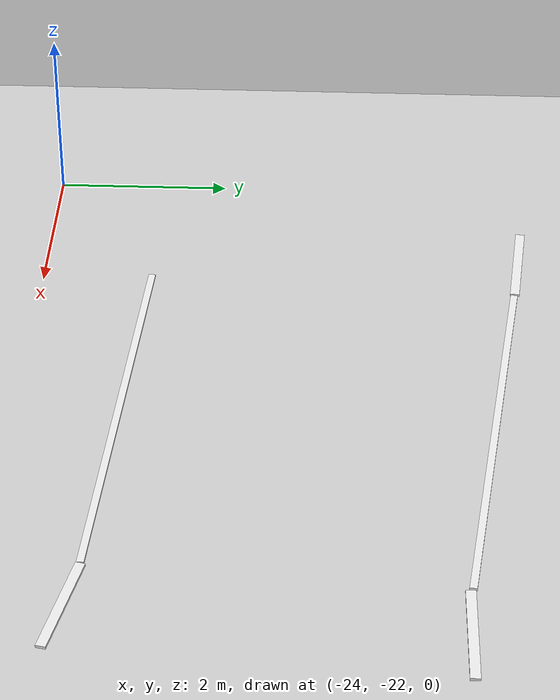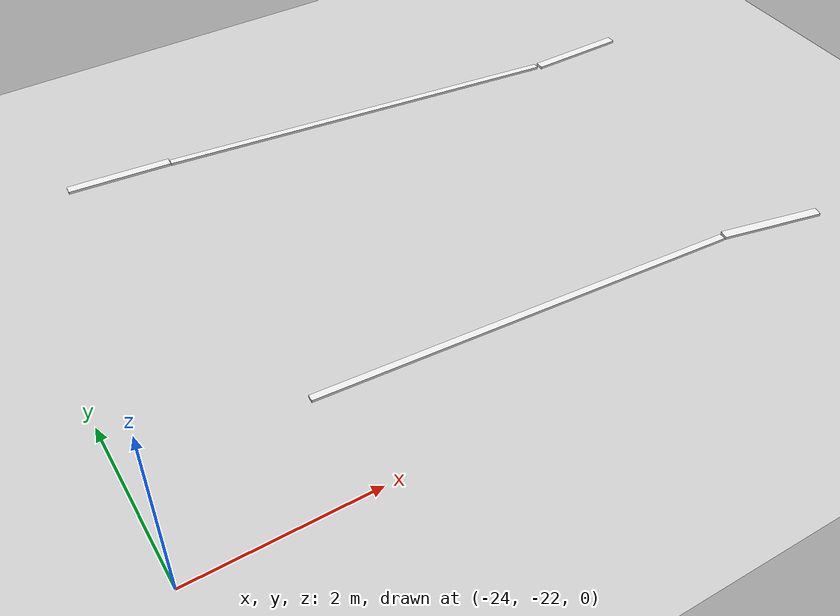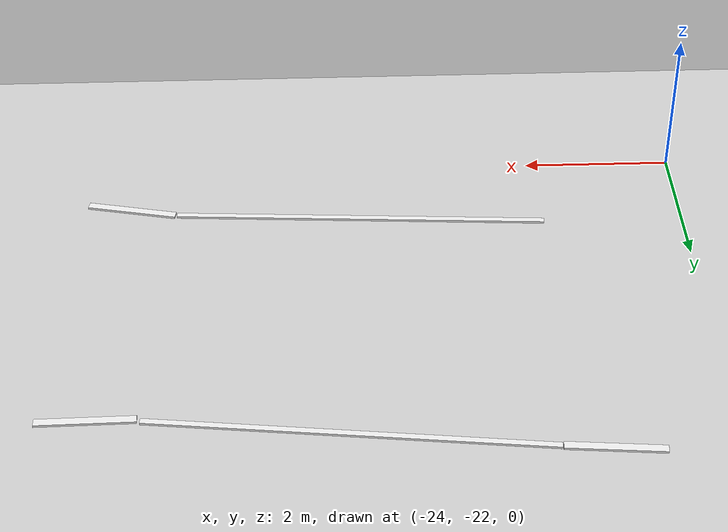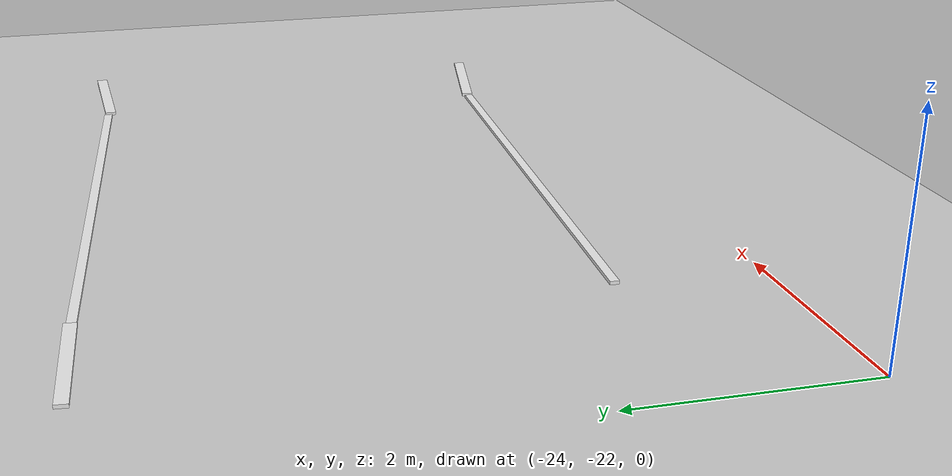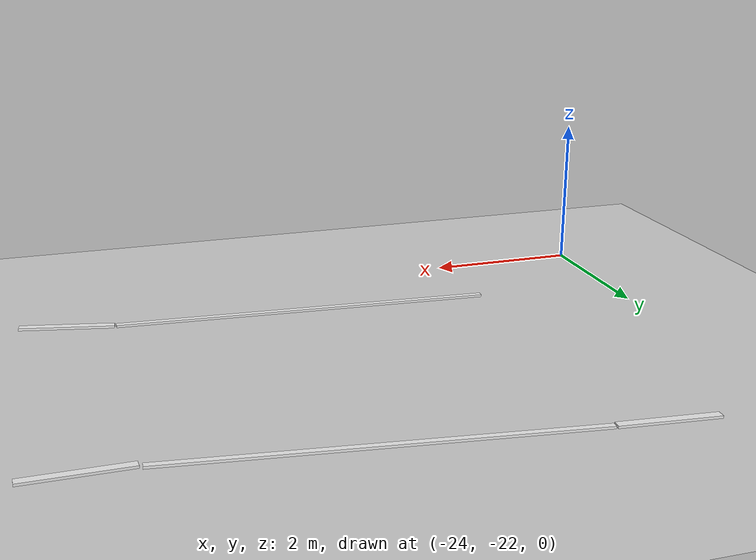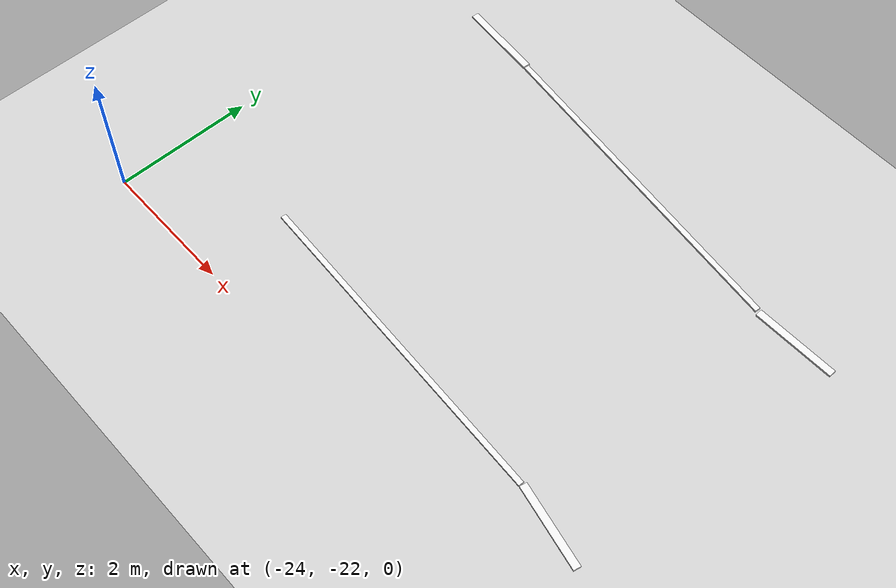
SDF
<sdf version="1.7">
 <world name="default">
  <model name="ground_plane">
   <static>1</static>
   <link name="link">
    <collision name="collision">
     <geometry><plane><normal>0 0 1</normal><size>100 100</size></plane></geometry>
     <surface><friction><ode><mu>100</mu><mu2>50</mu2></ode></friction></surface>
    </collision>
    <visual name="visual">
     <cast_shadows>0</cast_shadows>
     <geometry><plane><normal>0 0 1</normal><size>100 100</size></plane></geometry>
     <material>
      <script><uri>file://media/materials/scripts/gazebo.material</uri><name>Gazebo/Grey</name></script>
     </material>
    </visual>
   </link>
  </model>
  <model name="road_way_0_clone_0_clone_clone_0_clone_clone_clone_clone_clone_clone_clone_clone_0_clone_clone_0_clone_clone_clone_clone_clone_clone_clone">
   <link name="link">
    <inertial>
     <mass>1</mass>
     <inertia>
      <ixx>0.166667</ixx>
      <ixy>0</ixy>
      <ixz>0</ixz>
      <iyy>0.166667</iyy>
      <iyz>0</iyz>
      <izz>0.166667</izz>
     </inertia>
    </inertial>
    <visual name="visual">
     <geometry><box><size>0.106644 1.22348 0.03129</size></box></geometry>
     <material>
      <script><name>Gazebo/White</name><uri>file://media/materials/scripts/gazebo.material</uri></script>
      <shader type="pixel"><normal_map>__default__</normal_map></shader>
      <ambient>1 1 1 1</ambient>
      <diffuse>1 1 1 1</diffuse>
      <specular>0 0 0 1</specular>
      <emissive>0 0 0 1</emissive>
     </material>
    </visual>
    <collision name="collision">
     <geometry><box><size>0.10644 1.22348 0.03129</size></box></geometry>
     <surface>
      <friction>
       <ode><mu>1</mu><mu2>1</mu2><fdir1>0 0 0</fdir1><slip1>0</slip1><slip2>0</slip2></ode>
       <torsional>
        <coefficient>1</coefficient>
        <patch_radius>0</patch_radius>
        <surface_radius>0</surface_radius>
        <use_patch_radius>1</use_patch_radius>
        <ode><slip>0</slip></ode>
       </torsional>
      </friction>
      <bounce><restitution_coefficient>0</restitution_coefficient><threshold>1e+06</threshold></bounce>
      <contact>
       <collide_without_contact>0</collide_without_contact>
       <collide_without_contact_bitmask>1</collide_without_contact_bitmask>
       <collide_bitmask>1</collide_bitmask>
       <ode>
        <soft_cfm>0</soft_cfm>
        <soft_erp>0.2</soft_erp>
        <kp>1e+13</kp>
        <kd>1</kd>
        <max_vel>0.01</max_vel>
        <min_depth>0</min_depth>
       </ode>
       <bullet>
        <split_impulse>1</split_impulse>
        <split_impulse_penetration_threshold>-0.01</split_impulse_penetration_threshold>
        <soft_cfm>0</soft_cfm>
        <soft_erp>0.2</soft_erp>
        <kp>1e+13</kp>
        <kd>1</kd>
       </bullet>
      </contact>
     </surface>
    </collision>
   </link>
   <static>0</static>
   <pose>-22.4879 -16.4704 0.015638 -1.1e-05 -0 1.48391</pose>
  </model>
  <model name="road_way5m">
   <link name="link">
    <inertial>
     <mass>1</mass>
     <inertia>
      <ixx>0.166667</ixx>
      <ixy>0</ixy>
      <ixz>0</ixz>
      <iyy>0.166667</iyy>
      <iyz>0</iyz>
      <izz>0.166667</izz>
     </inertia>
    </inertial>
    <visual name="visual">
     <geometry><box><size>0.08 5 0.03129</size></box></geometry>
     <material>
      <script><name>Gazebo/White</name><uri>file://media/materials/scripts/gazebo.material</uri></script>
      <shader type="pixel"><normal_map>__default__</normal_map></shader>
      <ambient>1 1 1 1</ambient>
      <diffuse>1 1 1 1</diffuse>
      <specular>0 0 0 1</specular>
      <emissive>0 0 0 1</emissive>
     </material>
    </visual>
    <collision name="collision">
     <geometry><box><size>0.01644 0.01348 0.0129</size></box></geometry>
     <surface>
      <friction>
       <ode><mu>1</mu><mu2>1</mu2><fdir1>0 0 0</fdir1><slip1>0</slip1><slip2>0</slip2></ode>
       <torsional>
        <coefficient>1</coefficient>
        <patch_radius>0</patch_radius>
        <surface_radius>0</surface_radius>
        <use_patch_radius>1</use_patch_radius>
        <ode><slip>0</slip></ode>
       </torsional>
      </friction>
      <bounce><restitution_coefficient>0</restitution_coefficient><threshold>1e+06</threshold></bounce>
      <contact>
       <collide_without_contact>0</collide_without_contact>
       <collide_without_contact_bitmask>1</collide_without_contact_bitmask>
       <collide_bitmask>1</collide_bitmask>
       <ode>
        <soft_cfm>0</soft_cfm>
        <soft_erp>0.2</soft_erp>
        <kp>1e+13</kp>
        <kd>1</kd>
        <max_vel>0.01</max_vel>
        <min_depth>0</min_depth>
       </ode>
       <bullet>
        <split_impulse>1</split_impulse>
        <split_impulse_penetration_threshold>-0.01</split_impulse_penetration_threshold>
        <soft_cfm>0</soft_cfm>
        <soft_erp>0.2</soft_erp>
        <kp>1e+13</kp>
        <kd>1</kd>
       </bullet>
      </contact>
     </surface>
    </collision>
   </link>
   <static>0</static>
   <pose>-19.6219 -20.8882 0.00645 -8e-06 -2.8e-05 1.51133</pose>
  </model>
  <model name="road_way5m_clone">
   <link name="link">
    <inertial>
     <mass>1</mass>
     <inertia>
      <ixx>0.166667</ixx>
      <ixy>0</ixy>
      <ixz>0</ixz>
      <iyy>0.166667</iyy>
      <iyz>0</iyz>
      <izz>0.166667</izz>
     </inertia>
    </inertial>
    <visual name="visual">
     <geometry><box><size>0.08 5 0.03129</size></box></geometry>
     <material>
      <script><name>Gazebo/White</name><uri>file://media/materials/scripts/gazebo.material</uri></script>
      <shader type="pixel"><normal_map>__default__</normal_map></shader>
      <ambient>1 1 1 1</ambient>
      <diffuse>1 1 1 1</diffuse>
      <specular>0 0 0 1</specular>
      <emissive>0 0 0 1</emissive>
     </material>
    </visual>
    <collision name="collision">
     <geometry><box><size>0.01644 0.01348 0.0129</size></box></geometry>
     <surface>
      <friction>
       <ode><mu>1</mu><mu2>1</mu2><fdir1>0 0 0</fdir1><slip1>0</slip1><slip2>0</slip2></ode>
       <torsional>
        <coefficient>1</coefficient>
        <patch_radius>0</patch_radius>
        <surface_radius>0</surface_radius>
        <use_patch_radius>1</use_patch_radius>
        <ode><slip>0</slip></ode>
       </torsional>
      </friction>
      <bounce><restitution_coefficient>0</restitution_coefficient><threshold>1e+06</threshold></bounce>
      <contact>
       <collide_without_contact>0</collide_without_contact>
       <collide_without_contact_bitmask>1</collide_without_contact_bitmask>
       <collide_bitmask>1</collide_bitmask>
       <ode>
        <soft_cfm>0</soft_cfm>
        <soft_erp>0.2</soft_erp>
        <kp>1e+13</kp>
        <kd>1</kd>
        <max_vel>0.01</max_vel>
        <min_depth>0</min_depth>
       </ode>
       <bullet>
        <split_impulse>1</split_impulse>
        <split_impulse_penetration_threshold>-0.01</split_impulse_penetration_threshold>
        <soft_cfm>0</soft_cfm>
        <soft_erp>0.2</soft_erp>
        <kp>1e+13</kp>
        <kd>1</kd>
       </bullet>
      </contact>
     </surface>
    </collision>
   </link>
   <static>0</static>
   <pose>-19.3856 -16.8194 0.00645 -4e-06 -3e-06 1.45499</pose>
  </model>
  <model name="road_way_1">
   <link name="link">
    <inertial>
     <mass>1</mass>
     <inertia>
      <ixx>0.166667</ixx>
      <ixy>0</ixy>
      <ixz>0</ixz>
      <iyy>0.166667</iyy>
      <iyz>0</iyz>
      <izz>0.166667</izz>
     </inertia>
    </inertial>
    <visual name="visual">
     <geometry><box><size>0.106644 1.22348 0.03129</size></box></geometry>
     <material>
      <script><name>Gazebo/White</name><uri>file://media/materials/scripts/gazebo.material</uri></script>
      <shader type="pixel"><normal_map>__default__</normal_map></shader>
      <ambient>1 1 1 1</ambient>
      <diffuse>1 1 1 1</diffuse>
      <specular>0 0 0 1</specular>
      <emissive>0 0 0 1</emissive>
     </material>
    </visual>
    <collision name="collision">
     <geometry><box><size>0.10644 1.22348 0.03129</size></box></geometry>
     <surface>
      <friction>
       <ode><mu>1</mu><mu2>1</mu2><fdir1>0 0 0</fdir1><slip1>0</slip1><slip2>0</slip2></ode>
       <torsional>
        <coefficient>1</coefficient>
        <patch_radius>0</patch_radius>
        <surface_radius>0</surface_radius>
        <use_patch_radius>1</use_patch_radius>
        <ode><slip>0</slip></ode>
       </torsional>
      </friction>
      <bounce><restitution_coefficient>0</restitution_coefficient><threshold>1e+06</threshold></bounce>
      <contact>
       <collide_without_contact>0</collide_without_contact>
       <collide_without_contact_bitmask>1</collide_without_contact_bitmask>
       <collide_bitmask>1</collide_bitmask>
       <ode>
        <soft_cfm>0</soft_cfm>
        <soft_erp>0.2</soft_erp>
        <kp>1e+13</kp>
        <kd>1</kd>
        <max_vel>0.01</max_vel>
        <min_depth>0</min_depth>
       </ode>
       <bullet>
        <split_impulse>1</split_impulse>
        <split_impulse_penetration_threshold>-0.01</split_impulse_penetration_threshold>
        <soft_cfm>0</soft_cfm>
        <soft_erp>0.2</soft_erp>
        <kp>1e+13</kp>
        <kd>1</kd>
       </bullet>
      </contact>
     </surface>
    </collision>
   </link>
   <static>0</static>
   <pose>-16.2544 -17.1257 0.015638 -1.1e-05 -0 1.58678</pose>
  </model>
  <model name="road_way_1_clone">
   <link name="link">
    <inertial>
     <mass>1</mass>
     <inertia>
      <ixx>0.166667</ixx>
      <ixy>0</ixy>
      <ixz>0</ixz>
      <iyy>0.166667</iyy>
      <iyz>0</iyz>
      <izz>0.166667</izz>
     </inertia>
    </inertial>
    <visual name="visual">
     <geometry><box><size>0.106644 1.22348 0.03129</size></box></geometry>
     <material>
      <script><name>Gazebo/White</name><uri>file://media/materials/scripts/gazebo.material</uri></script>
      <shader type="pixel"><normal_map>__default__</normal_map></shader>
      <ambient>1 1 1 1</ambient>
      <diffuse>1 1 1 1</diffuse>
      <specular>0 0 0 1</specular>
      <emissive>0 0 0 1</emissive>
     </material>
    </visual>
    <collision name="collision">
     <geometry><box><size>0.10644 1.22348 0.03129</size></box></geometry>
     <surface>
      <friction>
       <ode><mu>1</mu><mu2>1</mu2><fdir1>0 0 0</fdir1><slip1>0</slip1><slip2>0</slip2></ode>
       <torsional>
        <coefficient>1</coefficient>
        <patch_radius>0</patch_radius>
        <surface_radius>0</surface_radius>
        <use_patch_radius>1</use_patch_radius>
        <ode><slip>0</slip></ode>
       </torsional>
      </friction>
      <bounce><restitution_coefficient>0</restitution_coefficient><threshold>1e+06</threshold></bounce>
      <contact>
       <collide_without_contact>0</collide_without_contact>
       <collide_without_contact_bitmask>1</collide_without_contact_bitmask>
       <collide_bitmask>1</collide_bitmask>
       <ode>
        <soft_cfm>0</soft_cfm>
        <soft_erp>0.2</soft_erp>
        <kp>1e+13</kp>
        <kd>1</kd>
        <max_vel>0.01</max_vel>
        <min_depth>0</min_depth>
       </ode>
       <bullet>
        <split_impulse>1</split_impulse>
        <split_impulse_penetration_threshold>-0.01</split_impulse_penetration_threshold>
        <soft_cfm>0</soft_cfm>
        <soft_erp>0.2</soft_erp>
        <kp>1e+13</kp>
        <kd>1</kd>
       </bullet>
      </contact>
     </surface>
    </collision>
   </link>
   <static>0</static>
   <pose>-16.5068 -21.1563 0.015638 1.1e-05 -0 1.36036</pose>
  </model>
 </world>
</sdf>
